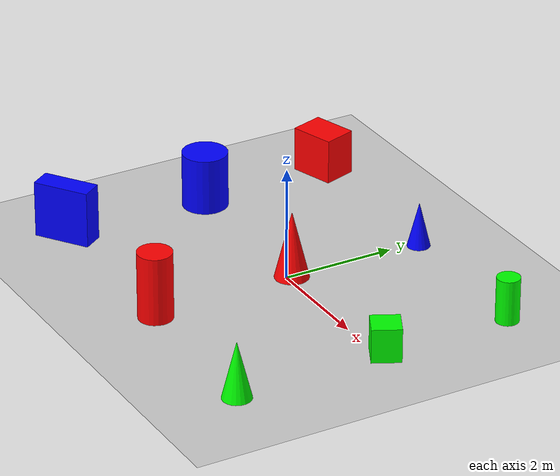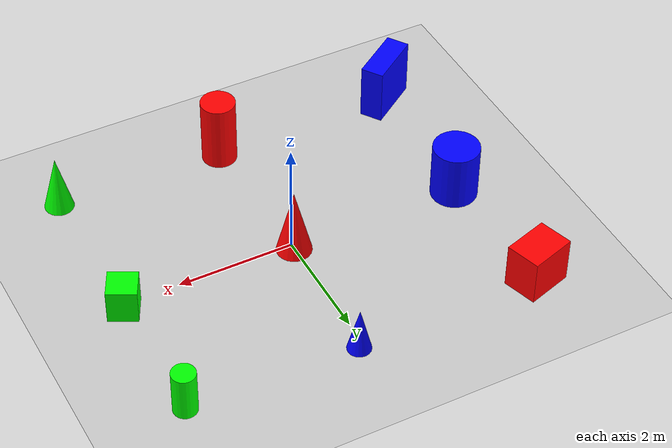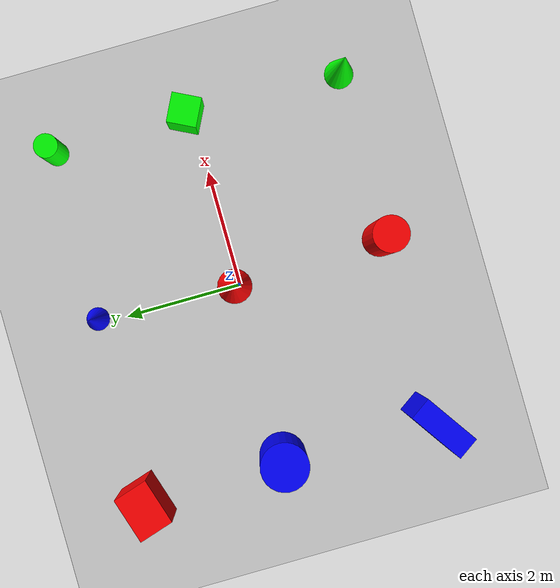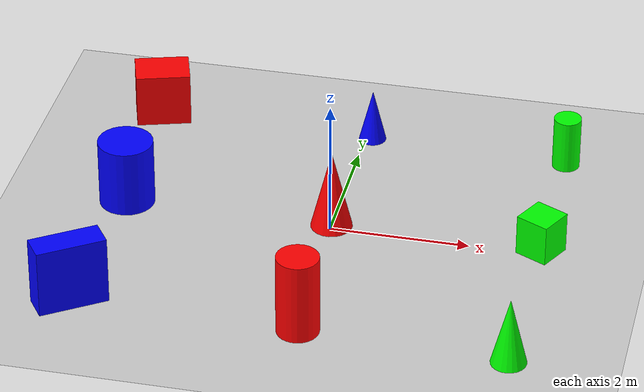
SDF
<?xml version="1.0" ?>
<sdf version="1.7">
  <world name="shapes_world">

    <physics name="1ms" type="ignored">
      <max_step_size>0.005</max_step_size>
      <real_time_factor>1.0</real_time_factor>
    </physics>

    <plugin
      filename="gz-sim-physics-system"
      name="gz::sim::systems::Physics">
    </plugin>
    <plugin
      filename="gz-sim-user-commands-system"
      name="gz::sim::systems::UserCommands">
    </plugin>
    <plugin
      filename="gz-sim-scene-broadcaster-system"
      name="gz::sim::systems::SceneBroadcaster">
    </plugin>

    <light type="directional" name="sun">
    <cast_shadows>true</cast_shadows>
      <pose>0 0 10 0 0 0</pose>
      <diffuse>1 1 1 1</diffuse>
      <specular>0.5 0.5 0.5 1</specular>
      <attenuation>
        <range>1000</range>
        <constant>0.9</constant>
        <linear>0.01</linear>
        <quadratic>0.001</quadratic>
      </attenuation>
      <direction>-0.5 0.1 -0.9</direction>
    </light>

    <model name="ground_plane">
      <static>true</static>
      <link name="link">
        <collision name="collision">
          <geometry>
            <plane>
              <normal>0 0 1</normal>
              <size>100 100</size>
            </plane>
          </geometry>
        </collision>
        <visual name="visual">
          <geometry>
            <plane>
              <normal>0 0 1</normal>
              <size>100 100</size>
            </plane>
          </geometry>
          <material>
            <ambient>0.8 0.8 0.8 1</ambient>
            <diffuse>0.8 0.8 0.8 1</diffuse>
            <specular>0.8 0.8 0.8 1</specular>
          </material>
        </visual>
      </link>
    </model>

    <!-- BOXES -->
    <model name="box_1">
      <static>true</static>
      <pose>-3.1 2.5 0.4 0 0 0.3</pose>
      <link name="link">
        <collision name="collision">
          <geometry><box><size>0.8 0.6 0.8</size></box></geometry>
        </collision>
        <visual name="visual">
          <geometry><box><size>0.8 0.6 0.8</size></box></geometry>
          <material>
            <ambient>1.0 0.0 0.0 1</ambient>
            <diffuse>1.0 0.0 0.0 1</diffuse>
            <specular>0.1 0.1 0.1 1</specular>
          </material>
        </visual>
      </link>
    </model>

    <model name="box_2">
      <static>true</static>
      <pose>3.0 0.1 0.3 0 0 1.1</pose>
      <link name="link">
        <collision name="collision">
          <geometry><box><size>0.5 0.5 0.6</size></box></geometry>
        </collision>
        <visual name="visual">
          <geometry><box><size>0.5 0.5 0.6</size></box></geometry>
          <material>
            <ambient>0.0 1.0 0.0 1</ambient>
            <diffuse>0.0 1.0 0.0 1</diffuse>
            <specular>0.1 0.1 0.1 1</specular>
          </material>
        </visual>
      </link>
    </model>

    <model name="box_3">
      <static>true</static>
      <pose>-3.1 -2.5 0.5 0 0 0.6</pose>
      <link name="link">
        <collision name="collision">
          <geometry><box><size>1.0 0.4 1.0</size></box></geometry>
        </collision>
        <visual name="visual">
          <geometry><box><size>1.0 0.4 1.0</size></box></geometry>
          <material>
            <ambient>0.0 0.0 1.0 1</ambient>
            <diffuse>0.0 0.0 1.0 1</diffuse>
            <specular>0.1 0.1 0.1 1</specular>
          </material>
        </visual>
      </link>
    </model>

    <!-- CYLINDERS -->
    <model name="cyl_1">
      <static>true</static>
      <pose>0.1 -2.5 0.6 0 0 0.2</pose>
      <link name="link">
        <collision name="collision">
          <geometry><cylinder><radius>0.3</radius><length>1.2</length></cylinder></geometry>
        </collision>
        <visual name="visual">
          <geometry><cylinder><radius>0.3</radius><length>1.2</length></cylinder></geometry>
          <material>
            <ambient>1.0 0.0 0.0 1</ambient>
            <diffuse>1.0 0.0 0.0 1</diffuse>
            <specular>0.1 0.1 0.1 1</specular>
          </material>
        </visual>
      </link>
    </model>

    <model name="cyl_2">
      <static>true</static>
      <pose>3.0 2.4 0.4 0 0 0.8</pose>
      <link name="link">
        <collision name="collision">
          <geometry><cylinder><radius>0.2</radius><length>0.8</length></cylinder></geometry>
        </collision>
        <visual name="visual">
          <geometry><cylinder><radius>0.2</radius><length>0.8</length></cylinder></geometry>
          <material>
            <ambient>0.0 1.0 0.0 1</ambient>
            <diffuse>0.0 1.0 0.0 1</diffuse>
            <specular>0.1 0.1 0.1 1</specular>
          </material>
        </visual>
      </link>
    </model>

    <model name="cyl_3">
      <static>true</static>
      <pose>-3.0 0.1 0.5 0 0 1.5</pose>
      <link name="link">
        <collision name="collision">
          <geometry><cylinder><radius>0.4</radius><length>1.0</length></cylinder></geometry>
        </collision>
        <visual name="visual">
          <geometry><cylinder><radius>0.4</radius><length>1.0</length></cylinder></geometry>
          <material>
            <ambient>0.0 0.0 1.0 1</ambient>
            <diffuse>0.0 0.0 1.0 1</diffuse>
            <specular>0.1 0.1 0.1 1</specular>
          </material>
        </visual>
      </link>
    </model>

    <!-- CONES -->
    <model name="cone_1">
      <static>true</static>
      <pose>0.0 0.1 0.6 0 0 0.4</pose>
      <link name="link">
        <collision name="collision">
          <geometry><cone><radius>0.3</radius><length>1.2</length></cone></geometry>
        </collision>
        <visual name="visual">
          <geometry><cone><radius>0.3</radius><length>1.2</length></cone></geometry>
          <material>
            <ambient>1.0 0.0 0.0 1</ambient>
            <diffuse>1.0 0.0 0.0 1</diffuse>
            <specular>0.1 0.1 0.1 1</specular>
          </material>
        </visual>
      </link>
    </model>

    <model name="cone_2">
      <static>true</static>
      <pose>3.0 -2.6 0.5 0 0 1.0</pose>
      <link name="link">
        <collision name="collision">
          <geometry><cone><radius>0.25</radius><length>1.0</length></cone></geometry>
        </collision>
        <visual name="visual">
          <geometry><cone><radius>0.25</radius><length>1.0</length></cone></geometry>
          <material>
            <ambient>0.0 1.0 0.0 1</ambient>
            <diffuse>0.0 1.0 0.0 1</diffuse>
            <specular>0.1 0.1 0.1 1</specular>
          </material>
        </visual>
      </link>
    </model>

    <model name="cone_3">
      <static>true</static>
      <pose>0.1 2.5 0.4 0 0 0.7</pose>
      <link name="link">
        <collision name="collision">
          <geometry><cone><radius>0.2</radius><length>0.8</length></cone></geometry>
        </collision>
        <visual name="visual">
          <geometry><cone><radius>0.2</radius><length>0.8</length></cone></geometry>
          <material>
            <ambient>0.0 0.0 1.0 1</ambient>
            <diffuse>0.0 0.0 1.0 1</diffuse>
            <specular>0.1 0.1 0.1 1</specular>
          </material>
        </visual>
      </link>
    </model>

    <plugin
      filename="gz-sim-sensors-system"
      name="gz::sim::systems::Sensors">
      <render_engine>ogre2</render_engine>
    </plugin>

  </world>
</sdf>
